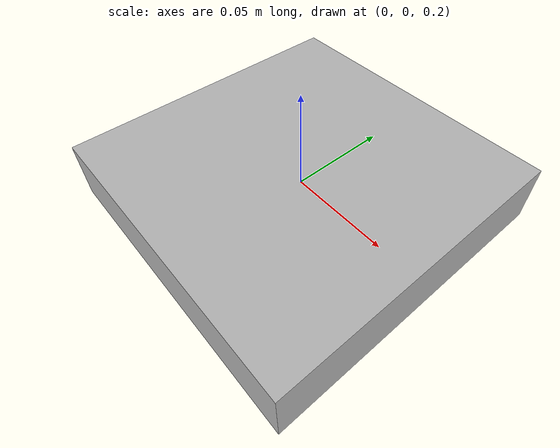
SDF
<?xml version="1.0" ?>
<sdf version="1.5">
    <model name="ar_056">
        <static>1</static>
        <link name="ar_056_link">
            <pose> 0 0 0.2 0 0 0</pose>
            <inertial>
                <mass>0.390</mass>
                <inertia>
                    <ixx>0.00058</ixx>
                    <ixy>0</ixy>
                    <ixz>0</ixz>
                    <iyy>0.00058</iyy>
                    <iyz>0</iyz>
                    <izz>0.00019</izz>
                </inertia>
            </inertial>
            <collision name="ar_056_collision">
                <geometry>
                    <box>
                        <size>0.15 0.15 0.001</size>
                    </box>
                </geometry>
            </collision>
            <visual name="ar_056_visual">
                <geometry>
                    <box>
                        <size>0.15 0.15 0.03</size>
                    </box>
                </geometry>
                <material>
                    <script>
                        <uri>model://ar_056/materials/scripts</uri>
                        <uri>model://ar_056/materials/textures</uri>
                        <name>AR056/Diffuse</name>
                    </script>
                </material>
            </visual>
        </link>
    </model>
</sdf>
